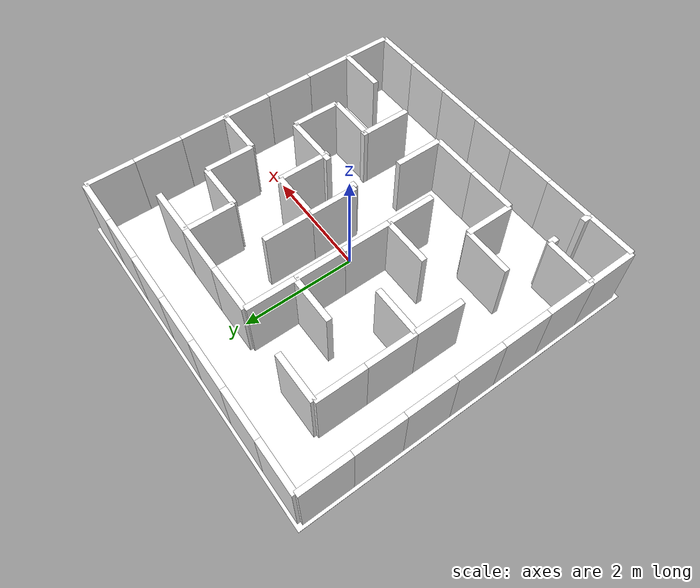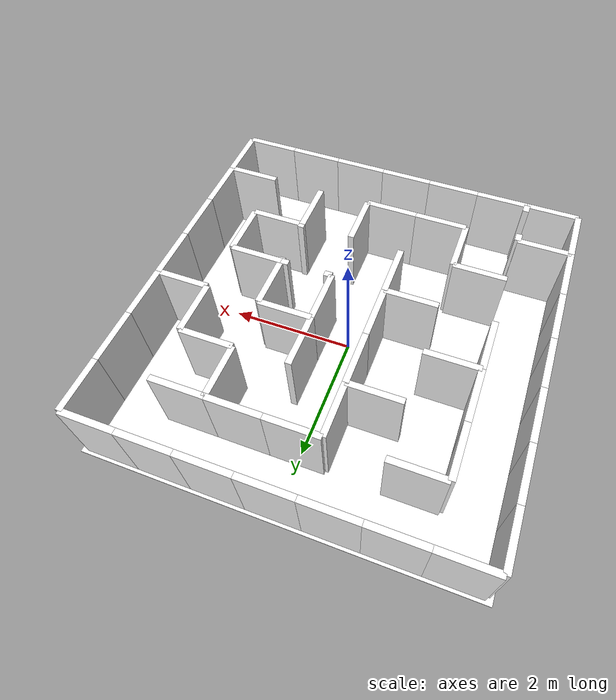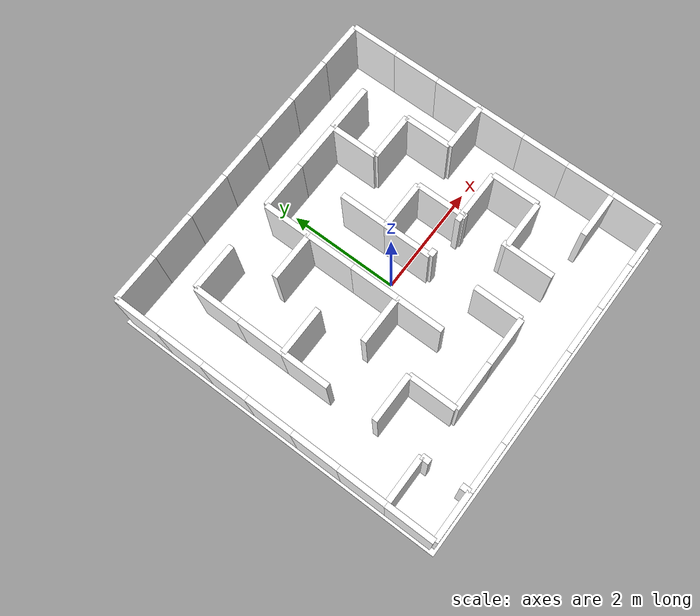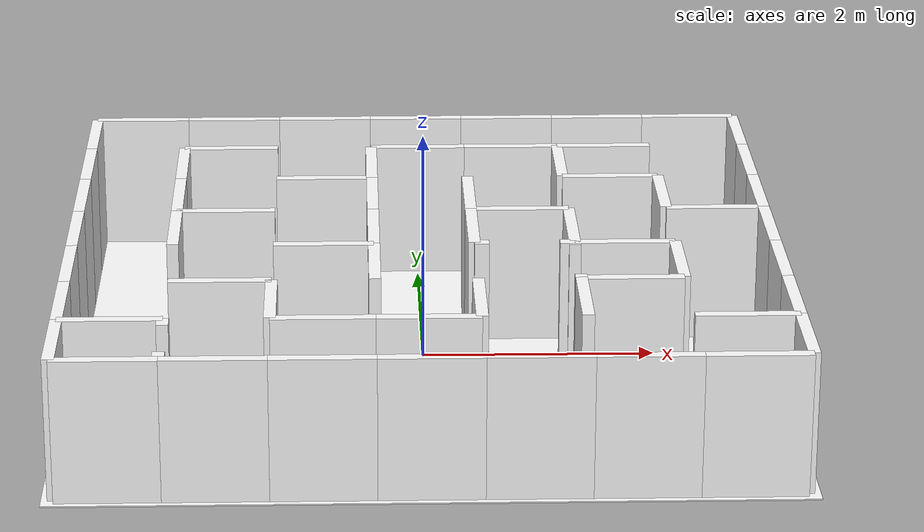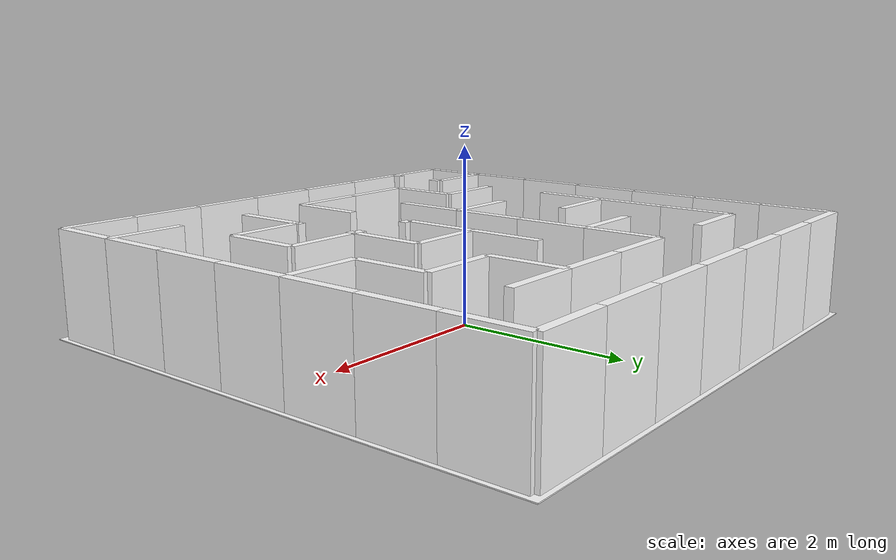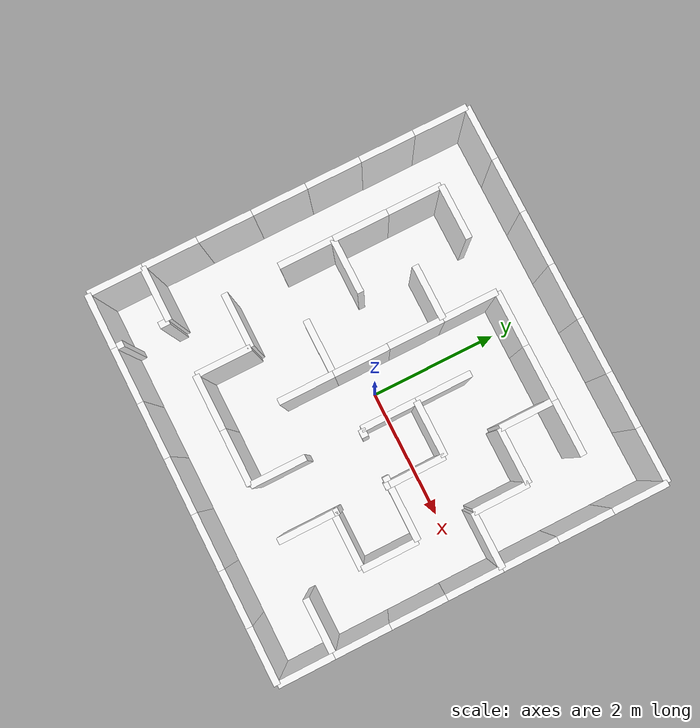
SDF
<?xml version="1.0" ?>
<!-- generate_maze.py 로 생성됨. 직접 수정하지 말고 생성기를 고치세요. -->
<sdf version="1.9">
  <world name="maze">

    <physics name="1ms" type="ignored">
      <max_step_size>0.001</max_step_size>
      <real_time_factor>1.0</real_time_factor>
    </physics>

    <plugin filename="gz-sim-physics-system"
            name="gz::sim::systems::Physics"/>
    <plugin filename="gz-sim-user-commands-system"
            name="gz::sim::systems::UserCommands"/>
    <plugin filename="gz-sim-scene-broadcaster-system"
            name="gz::sim::systems::SceneBroadcaster"/>
    <!-- 카메라/뎁스 렌더링에 필요 -->
    <plugin filename="gz-sim-sensors-system"
            name="gz::sim::systems::Sensors">
      <render_engine>ogre2</render_engine>
    </plugin>
    <plugin filename="gz-sim-imu-system"
            name="gz::sim::systems::Imu"/>
    <plugin filename="gz-sim-contact-system"
            name="gz::sim::systems::Contact"/>

    <gravity>0 0 -9.8</gravity>

    <scene>
      <ambient>0.6 0.6 0.6 1</ambient>
      <background>0.75 0.82 0.9 1</background>
      <shadows>true</shadows>
    </scene>

    <light type="directional" name="sun">
      <cast_shadows>true</cast_shadows>
      <pose>0 0 8 0 0 0</pose>
      <diffuse>0.7 0.7 0.7 1</diffuse>
      <specular>0.1 0.1 0.1 1</specular>
      <direction>-0.4 0.3 -0.9</direction>
    </light>
    <light type="directional" name="fill">
      <cast_shadows>false</cast_shadows>
      <pose>0 0 8 0 0 0</pose>
      <diffuse>0.35 0.35 0.4 1</diffuse>
      <specular>0 0 0 1</specular>
      <direction>0.5 -0.4 -0.8</direction>
    </light>

    <model name="ground_plane">
      <static>true</static>
      <link name="link">
        <collision name="collision">
          <geometry><plane><normal>0 0 1</normal><size>100 100</size></plane></geometry>
          <surface><friction><ode><mu>1.0</mu><mu2>1.0</mu2></ode></friction></surface>
        </collision>
      </link>
    </model>

    <model name="floor">
      <static>true</static>
      <pose>0 0 -0.005 0 0 0</pose>
      <link name="link"><visual name="v">
        <geometry><box><size>6.150 6.150 0.01</size></box></geometry>
        <material><diffuse>1 1 1 1</diffuse><pbr><metal>
          <albedo_map>model://room_materials/materials/textures/floor.png</albedo_map><roughness>0.95</roughness>
        </metal></pbr></material>
      </visual></link>
    </model>
    <model name="vw_0_0">
      <static>true</static>
      <pose>-2.9750 -2.5500 0.6000 0 0 0</pose>
      <link name="link">
        <collision name="c">
          <geometry><box><size>0.1000 0.8500 1.2000</size></box></geometry>
        </collision>
        <visual name="v">
          <geometry><box><size>0.1000 0.8500 1.2000</size></box></geometry>
          <material>
            <diffuse>1 1 1 1</diffuse>
            <pbr><metal>
              <albedo_map>model://room_materials/materials/textures/maze_000.png</albedo_map>
              <roughness>0.9</roughness>
            </metal></pbr>
          </material>
        </visual>
      </link>
    </model>
    <model name="vw_0_1">
      <static>true</static>
      <pose>-2.9750 -1.7000 0.6000 0 0 0</pose>
      <link name="link">
        <collision name="c">
          <geometry><box><size>0.1000 0.8500 1.2000</size></box></geometry>
        </collision>
        <visual name="v">
          <geometry><box><size>0.1000 0.8500 1.2000</size></box></geometry>
          <material>
            <diffuse>1 1 1 1</diffuse>
            <pbr><metal>
              <albedo_map>model://room_materials/materials/textures/maze_001.png</albedo_map>
              <roughness>0.9</roughness>
            </metal></pbr>
          </material>
        </visual>
      </link>
    </model>
    <model name="vw_0_2">
      <static>true</static>
      <pose>-2.9750 -0.8500 0.6000 0 0 0</pose>
      <link name="link">
        <collision name="c">
          <geometry><box><size>0.1000 0.8500 1.2000</size></box></geometry>
        </collision>
        <visual name="v">
          <geometry><box><size>0.1000 0.8500 1.2000</size></box></geometry>
          <material>
            <diffuse>1 1 1 1</diffuse>
            <pbr><metal>
              <albedo_map>model://room_materials/materials/textures/maze_002.png</albedo_map>
              <roughness>0.9</roughness>
            </metal></pbr>
          </material>
        </visual>
      </link>
    </model>
    <model name="vw_0_3">
      <static>true</static>
      <pose>-2.9750 0.0000 0.6000 0 0 0</pose>
      <link name="link">
        <collision name="c">
          <geometry><box><size>0.1000 0.8500 1.2000</size></box></geometry>
        </collision>
        <visual name="v">
          <geometry><box><size>0.1000 0.8500 1.2000</size></box></geometry>
          <material>
            <diffuse>1 1 1 1</diffuse>
            <pbr><metal>
              <albedo_map>model://room_materials/materials/textures/maze_003.png</albedo_map>
              <roughness>0.9</roughness>
            </metal></pbr>
          </material>
        </visual>
      </link>
    </model>
    <model name="vw_0_4">
      <static>true</static>
      <pose>-2.9750 0.8500 0.6000 0 0 0</pose>
      <link name="link">
        <collision name="c">
          <geometry><box><size>0.1000 0.8500 1.2000</size></box></geometry>
        </collision>
        <visual name="v">
          <geometry><box><size>0.1000 0.8500 1.2000</size></box></geometry>
          <material>
            <diffuse>1 1 1 1</diffuse>
            <pbr><metal>
              <albedo_map>model://room_materials/materials/textures/maze_004.png</albedo_map>
              <roughness>0.9</roughness>
            </metal></pbr>
          </material>
        </visual>
      </link>
    </model>
    <model name="vw_0_5">
      <static>true</static>
      <pose>-2.9750 1.7000 0.6000 0 0 0</pose>
      <link name="link">
        <collision name="c">
          <geometry><box><size>0.1000 0.8500 1.2000</size></box></geometry>
        </collision>
        <visual name="v">
          <geometry><box><size>0.1000 0.8500 1.2000</size></box></geometry>
          <material>
            <diffuse>1 1 1 1</diffuse>
            <pbr><metal>
              <albedo_map>model://room_materials/materials/textures/maze_005.png</albedo_map>
              <roughness>0.9</roughness>
            </metal></pbr>
          </material>
        </visual>
      </link>
    </model>
    <model name="vw_0_6">
      <static>true</static>
      <pose>-2.9750 2.5500 0.6000 0 0 0</pose>
      <link name="link">
        <collision name="c">
          <geometry><box><size>0.1000 0.8500 1.2000</size></box></geometry>
        </collision>
        <visual name="v">
          <geometry><box><size>0.1000 0.8500 1.2000</size></box></geometry>
          <material>
            <diffuse>1 1 1 1</diffuse>
            <pbr><metal>
              <albedo_map>model://room_materials/materials/textures/maze_006.png</albedo_map>
              <roughness>0.9</roughness>
            </metal></pbr>
          </material>
        </visual>
      </link>
    </model>
    <model name="vwn_1_0_a">
      <static>true</static>
      <pose>-2.1250 -2.9000 0.6000 0 0 0</pose>
      <link name="link">
        <collision name="c">
          <geometry><box><size>0.1000 0.1500 1.2000</size></box></geometry>
        </collision>
        <visual name="v">
          <geometry><box><size>0.1000 0.1500 1.2000</size></box></geometry>
          <material>
            <diffuse>1 1 1 1</diffuse>
            <pbr><metal>
              <albedo_map>model://room_materials/materials/textures/maze_007.png</albedo_map>
              <roughness>0.9</roughness>
            </metal></pbr>
          </material>
        </visual>
      </link>
    </model>
    <model name="vwn_1_0_b">
      <static>true</static>
      <pose>-2.1250 -2.2000 0.6000 0 0 0</pose>
      <link name="link">
        <collision name="c">
          <geometry><box><size>0.1000 0.1500 1.2000</size></box></geometry>
        </collision>
        <visual name="v">
          <geometry><box><size>0.1000 0.1500 1.2000</size></box></geometry>
          <material>
            <diffuse>1 1 1 1</diffuse>
            <pbr><metal>
              <albedo_map>model://room_materials/materials/textures/maze_008.png</albedo_map>
              <roughness>0.9</roughness>
            </metal></pbr>
          </material>
        </visual>
      </link>
    </model>
    <model name="vw_1_3">
      <static>true</static>
      <pose>-2.1250 0.0000 0.6000 0 0 0</pose>
      <link name="link">
        <collision name="c">
          <geometry><box><size>0.1000 0.8500 1.2000</size></box></geometry>
        </collision>
        <visual name="v">
          <geometry><box><size>0.1000 0.8500 1.2000</size></box></geometry>
          <material>
            <diffuse>1 1 1 1</diffuse>
            <pbr><metal>
              <albedo_map>model://room_materials/materials/textures/maze_009.png</albedo_map>
              <roughness>0.9</roughness>
            </metal></pbr>
          </material>
        </visual>
      </link>
    </model>
    <model name="vw_1_4">
      <static>true</static>
      <pose>-2.1250 0.8500 0.6000 0 0 0</pose>
      <link name="link">
        <collision name="c">
          <geometry><box><size>0.1000 0.8500 1.2000</size></box></geometry>
        </collision>
        <visual name="v">
          <geometry><box><size>0.1000 0.8500 1.2000</size></box></geometry>
          <material>
            <diffuse>1 1 1 1</diffuse>
            <pbr><metal>
              <albedo_map>model://room_materials/materials/textures/maze_010.png</albedo_map>
              <roughness>0.9</roughness>
            </metal></pbr>
          </material>
        </visual>
      </link>
    </model>
    <model name="vw_1_5">
      <static>true</static>
      <pose>-2.1250 1.7000 0.6000 0 0 0</pose>
      <link name="link">
        <collision name="c">
          <geometry><box><size>0.1000 0.8500 1.2000</size></box></geometry>
        </collision>
        <visual name="v">
          <geometry><box><size>0.1000 0.8500 1.2000</size></box></geometry>
          <material>
            <diffuse>1 1 1 1</diffuse>
            <pbr><metal>
              <albedo_map>model://room_materials/materials/textures/maze_011.png</albedo_map>
              <roughness>0.9</roughness>
            </metal></pbr>
          </material>
        </visual>
      </link>
    </model>
    <model name="vw_2_1">
      <static>true</static>
      <pose>-1.2750 -1.7000 0.6000 0 0 0</pose>
      <link name="link">
        <collision name="c">
          <geometry><box><size>0.1000 0.8500 1.2000</size></box></geometry>
        </collision>
        <visual name="v">
          <geometry><box><size>0.1000 0.8500 1.2000</size></box></geometry>
          <material>
            <diffuse>1 1 1 1</diffuse>
            <pbr><metal>
              <albedo_map>model://room_materials/materials/textures/maze_012.png</albedo_map>
              <roughness>0.9</roughness>
            </metal></pbr>
          </material>
        </visual>
      </link>
    </model>
    <model name="vw_3_2">
      <static>true</static>
      <pose>-0.4250 -0.8500 0.6000 0 0 0</pose>
      <link name="link">
        <collision name="c">
          <geometry><box><size>0.1000 0.8500 1.2000</size></box></geometry>
        </collision>
        <visual name="v">
          <geometry><box><size>0.1000 0.8500 1.2000</size></box></geometry>
          <material>
            <diffuse>1 1 1 1</diffuse>
            <pbr><metal>
              <albedo_map>model://room_materials/materials/textures/maze_013.png</albedo_map>
              <roughness>0.9</roughness>
            </metal></pbr>
          </material>
        </visual>
      </link>
    </model>
    <model name="vw_3_3">
      <static>true</static>
      <pose>-0.4250 0.0000 0.6000 0 0 0</pose>
      <link name="link">
        <collision name="c">
          <geometry><box><size>0.1000 0.8500 1.2000</size></box></geometry>
        </collision>
        <visual name="v">
          <geometry><box><size>0.1000 0.8500 1.2000</size></box></geometry>
          <material>
            <diffuse>1 1 1 1</diffuse>
            <pbr><metal>
              <albedo_map>model://room_materials/materials/textures/maze_014.png</albedo_map>
              <roughness>0.9</roughness>
            </metal></pbr>
          </material>
        </visual>
      </link>
    </model>
    <model name="vw_3_4">
      <static>true</static>
      <pose>-0.4250 0.8500 0.6000 0 0 0</pose>
      <link name="link">
        <collision name="c">
          <geometry><box><size>0.1000 0.8500 1.2000</size></box></geometry>
        </collision>
        <visual name="v">
          <geometry><box><size>0.1000 0.8500 1.2000</size></box></geometry>
          <material>
            <diffuse>1 1 1 1</diffuse>
            <pbr><metal>
              <albedo_map>model://room_materials/materials/textures/maze_015.png</albedo_map>
              <roughness>0.9</roughness>
            </metal></pbr>
          </material>
        </visual>
      </link>
    </model>
    <model name="vw_3_5">
      <static>true</static>
      <pose>-0.4250 1.7000 0.6000 0 0 0</pose>
      <link name="link">
        <collision name="c">
          <geometry><box><size>0.1000 0.8500 1.2000</size></box></geometry>
        </collision>
        <visual name="v">
          <geometry><box><size>0.1000 0.8500 1.2000</size></box></geometry>
          <material>
            <diffuse>1 1 1 1</diffuse>
            <pbr><metal>
              <albedo_map>model://room_materials/materials/textures/maze_016.png</albedo_map>
              <roughness>0.9</roughness>
            </metal></pbr>
          </material>
        </visual>
      </link>
    </model>
    <model name="vw_4_1">
      <static>true</static>
      <pose>0.4250 -1.7000 0.6000 0 0 0</pose>
      <link name="link">
        <collision name="c">
          <geometry><box><size>0.1000 0.8500 1.2000</size></box></geometry>
        </collision>
        <visual name="v">
          <geometry><box><size>0.1000 0.8500 1.2000</size></box></geometry>
          <material>
            <diffuse>1 1 1 1</diffuse>
            <pbr><metal>
              <albedo_map>model://room_materials/materials/textures/maze_017.png</albedo_map>
              <roughness>0.9</roughness>
            </metal></pbr>
          </material>
        </visual>
      </link>
    </model>
    <model name="vw_4_3">
      <static>true</static>
      <pose>0.4250 0.0000 0.6000 0 0 0</pose>
      <link name="link">
        <collision name="c">
          <geometry><box><size>0.1000 0.8500 1.2000</size></box></geometry>
        </collision>
        <visual name="v">
          <geometry><box><size>0.1000 0.8500 1.2000</size></box></geometry>
          <material>
            <diffuse>1 1 1 1</diffuse>
            <pbr><metal>
              <albedo_map>model://room_materials/materials/textures/maze_018.png</albedo_map>
              <roughness>0.9</roughness>
            </metal></pbr>
          </material>
        </visual>
      </link>
    </model>
    <model name="vw_4_4">
      <static>true</static>
      <pose>0.4250 0.8500 0.6000 0 0 0</pose>
      <link name="link">
        <collision name="c">
          <geometry><box><size>0.1000 0.8500 1.2000</size></box></geometry>
        </collision>
        <visual name="v">
          <geometry><box><size>0.1000 0.8500 1.2000</size></box></geometry>
          <material>
            <diffuse>1 1 1 1</diffuse>
            <pbr><metal>
              <albedo_map>model://room_materials/materials/textures/maze_019.png</albedo_map>
              <roughness>0.9</roughness>
            </metal></pbr>
          </material>
        </visual>
      </link>
    </model>
    <model name="vw_5_1">
      <static>true</static>
      <pose>1.2750 -1.7000 0.6000 0 0 0</pose>
      <link name="link">
        <collision name="c">
          <geometry><box><size>0.1000 0.8500 1.2000</size></box></geometry>
        </collision>
        <visual name="v">
          <geometry><box><size>0.1000 0.8500 1.2000</size></box></geometry>
          <material>
            <diffuse>1 1 1 1</diffuse>
            <pbr><metal>
              <albedo_map>model://room_materials/materials/textures/maze_020.png</albedo_map>
              <roughness>0.9</roughness>
            </metal></pbr>
          </material>
        </visual>
      </link>
    </model>
    <model name="vwn_5_2_a">
      <static>true</static>
      <pose>1.2750 -1.2375 0.6000 0 0 0</pose>
      <link name="link">
        <collision name="c">
          <geometry><box><size>0.1000 0.0750 1.2000</size></box></geometry>
        </collision>
        <visual name="v">
          <geometry><box><size>0.1000 0.0750 1.2000</size></box></geometry>
          <material>
            <diffuse>1 1 1 1</diffuse>
            <pbr><metal>
              <albedo_map>model://room_materials/materials/textures/maze_021.png</albedo_map>
              <roughness>0.9</roughness>
            </metal></pbr>
          </material>
        </visual>
      </link>
    </model>
    <model name="vwn_5_2_b">
      <static>true</static>
      <pose>1.2750 -0.4625 0.6000 0 0 0</pose>
      <link name="link">
        <collision name="c">
          <geometry><box><size>0.1000 0.0750 1.2000</size></box></geometry>
        </collision>
        <visual name="v">
          <geometry><box><size>0.1000 0.0750 1.2000</size></box></geometry>
          <material>
            <diffuse>1 1 1 1</diffuse>
            <pbr><metal>
              <albedo_map>model://room_materials/materials/textures/maze_022.png</albedo_map>
              <roughness>0.9</roughness>
            </metal></pbr>
          </material>
        </visual>
      </link>
    </model>
    <model name="vw_5_3">
      <static>true</static>
      <pose>1.2750 0.0000 0.6000 0 0 0</pose>
      <link name="link">
        <collision name="c">
          <geometry><box><size>0.1000 0.8500 1.2000</size></box></geometry>
        </collision>
        <visual name="v">
          <geometry><box><size>0.1000 0.8500 1.2000</size></box></geometry>
          <material>
            <diffuse>1 1 1 1</diffuse>
            <pbr><metal>
              <albedo_map>model://room_materials/materials/textures/maze_023.png</albedo_map>
              <roughness>0.9</roughness>
            </metal></pbr>
          </material>
        </visual>
      </link>
    </model>
    <model name="vw_5_5">
      <static>true</static>
      <pose>1.2750 1.7000 0.6000 0 0 0</pose>
      <link name="link">
        <collision name="c">
          <geometry><box><size>0.1000 0.8500 1.2000</size></box></geometry>
        </collision>
        <visual name="v">
          <geometry><box><size>0.1000 0.8500 1.2000</size></box></geometry>
          <material>
            <diffuse>1 1 1 1</diffuse>
            <pbr><metal>
              <albedo_map>model://room_materials/materials/textures/maze_024.png</albedo_map>
              <roughness>0.9</roughness>
            </metal></pbr>
          </material>
        </visual>
      </link>
    </model>
    <model name="vw_6_2">
      <static>true</static>
      <pose>2.1250 -0.8500 0.6000 0 0 0</pose>
      <link name="link">
        <collision name="c">
          <geometry><box><size>0.1000 0.8500 1.2000</size></box></geometry>
        </collision>
        <visual name="v">
          <geometry><box><size>0.1000 0.8500 1.2000</size></box></geometry>
          <material>
            <diffuse>1 1 1 1</diffuse>
            <pbr><metal>
              <albedo_map>model://room_materials/materials/textures/maze_025.png</albedo_map>
              <roughness>0.9</roughness>
            </metal></pbr>
          </material>
        </visual>
      </link>
    </model>
    <model name="vw_6_4">
      <static>true</static>
      <pose>2.1250 0.8500 0.6000 0 0 0</pose>
      <link name="link">
        <collision name="c">
          <geometry><box><size>0.1000 0.8500 1.2000</size></box></geometry>
        </collision>
        <visual name="v">
          <geometry><box><size>0.1000 0.8500 1.2000</size></box></geometry>
          <material>
            <diffuse>1 1 1 1</diffuse>
            <pbr><metal>
              <albedo_map>model://room_materials/materials/textures/maze_026.png</albedo_map>
              <roughness>0.9</roughness>
            </metal></pbr>
          </material>
        </visual>
      </link>
    </model>
    <model name="vw_7_0">
      <static>true</static>
      <pose>2.9750 -2.5500 0.6000 0 0 0</pose>
      <link name="link">
        <collision name="c">
          <geometry><box><size>0.1000 0.8500 1.2000</size></box></geometry>
        </collision>
        <visual name="v">
          <geometry><box><size>0.1000 0.8500 1.2000</size></box></geometry>
          <material>
            <diffuse>1 1 1 1</diffuse>
            <pbr><metal>
              <albedo_map>model://room_materials/materials/textures/maze_027.png</albedo_map>
              <roughness>0.9</roughness>
            </metal></pbr>
          </material>
        </visual>
      </link>
    </model>
    <model name="vw_7_1">
      <static>true</static>
      <pose>2.9750 -1.7000 0.6000 0 0 0</pose>
      <link name="link">
        <collision name="c">
          <geometry><box><size>0.1000 0.8500 1.2000</size></box></geometry>
        </collision>
        <visual name="v">
          <geometry><box><size>0.1000 0.8500 1.2000</size></box></geometry>
          <material>
            <diffuse>1 1 1 1</diffuse>
            <pbr><metal>
              <albedo_map>model://room_materials/materials/textures/maze_028.png</albedo_map>
              <roughness>0.9</roughness>
            </metal></pbr>
          </material>
        </visual>
      </link>
    </model>
    <model name="vw_7_2">
      <static>true</static>
      <pose>2.9750 -0.8500 0.6000 0 0 0</pose>
      <link name="link">
        <collision name="c">
          <geometry><box><size>0.1000 0.8500 1.2000</size></box></geometry>
        </collision>
        <visual name="v">
          <geometry><box><size>0.1000 0.8500 1.2000</size></box></geometry>
          <material>
            <diffuse>1 1 1 1</diffuse>
            <pbr><metal>
              <albedo_map>model://room_materials/materials/textures/maze_029.png</albedo_map>
              <roughness>0.9</roughness>
            </metal></pbr>
          </material>
        </visual>
      </link>
    </model>
    <model name="vw_7_3">
      <static>true</static>
      <pose>2.9750 0.0000 0.6000 0 0 0</pose>
      <link name="link">
        <collision name="c">
          <geometry><box><size>0.1000 0.8500 1.2000</size></box></geometry>
        </collision>
        <visual name="v">
          <geometry><box><size>0.1000 0.8500 1.2000</size></box></geometry>
          <material>
            <diffuse>1 1 1 1</diffuse>
            <pbr><metal>
              <albedo_map>model://room_materials/materials/textures/maze_030.png</albedo_map>
              <roughness>0.9</roughness>
            </metal></pbr>
          </material>
        </visual>
      </link>
    </model>
    <model name="vw_7_4">
      <static>true</static>
      <pose>2.9750 0.8500 0.6000 0 0 0</pose>
      <link name="link">
        <collision name="c">
          <geometry><box><size>0.1000 0.8500 1.2000</size></box></geometry>
        </collision>
        <visual name="v">
          <geometry><box><size>0.1000 0.8500 1.2000</size></box></geometry>
          <material>
            <diffuse>1 1 1 1</diffuse>
            <pbr><metal>
              <albedo_map>model://room_materials/materials/textures/maze_031.png</albedo_map>
              <roughness>0.9</roughness>
            </metal></pbr>
          </material>
        </visual>
      </link>
    </model>
    <model name="vw_7_5">
      <static>true</static>
      <pose>2.9750 1.7000 0.6000 0 0 0</pose>
      <link name="link">
        <collision name="c">
          <geometry><box><size>0.1000 0.8500 1.2000</size></box></geometry>
        </collision>
        <visual name="v">
          <geometry><box><size>0.1000 0.8500 1.2000</size></box></geometry>
          <material>
            <diffuse>1 1 1 1</diffuse>
            <pbr><metal>
              <albedo_map>model://room_materials/materials/textures/maze_032.png</albedo_map>
              <roughness>0.9</roughness>
            </metal></pbr>
          </material>
        </visual>
      </link>
    </model>
    <model name="vw_7_6">
      <static>true</static>
      <pose>2.9750 2.5500 0.6000 0 0 0</pose>
      <link name="link">
        <collision name="c">
          <geometry><box><size>0.1000 0.8500 1.2000</size></box></geometry>
        </collision>
        <visual name="v">
          <geometry><box><size>0.1000 0.8500 1.2000</size></box></geometry>
          <material>
            <diffuse>1 1 1 1</diffuse>
            <pbr><metal>
              <albedo_map>model://room_materials/materials/textures/maze_033.png</albedo_map>
              <roughness>0.9</roughness>
            </metal></pbr>
          </material>
        </visual>
      </link>
    </model>
    <model name="hw_0_0">
      <static>true</static>
      <pose>-2.5500 -2.9750 0.6000 0 0 0</pose>
      <link name="link">
        <collision name="c">
          <geometry><box><size>0.8500 0.1000 1.2000</size></box></geometry>
        </collision>
        <visual name="v">
          <geometry><box><size>0.8500 0.1000 1.2000</size></box></geometry>
          <material>
            <diffuse>1 1 1 1</diffuse>
            <pbr><metal>
              <albedo_map>model://room_materials/materials/textures/maze_034.png</albedo_map>
              <roughness>0.9</roughness>
            </metal></pbr>
          </material>
        </visual>
      </link>
    </model>
    <model name="hw_0_1">
      <static>true</static>
      <pose>-2.5500 -2.1250 0.6000 0 0 0</pose>
      <link name="link">
        <collision name="c">
          <geometry><box><size>0.8500 0.1000 1.2000</size></box></geometry>
        </collision>
        <visual name="v">
          <geometry><box><size>0.8500 0.1000 1.2000</size></box></geometry>
          <material>
            <diffuse>1 1 1 1</diffuse>
            <pbr><metal>
              <albedo_map>model://room_materials/materials/textures/maze_035.png</albedo_map>
              <roughness>0.9</roughness>
            </metal></pbr>
          </material>
        </visual>
      </link>
    </model>
    <model name="hw_0_7">
      <static>true</static>
      <pose>-2.5500 2.9750 0.6000 0 0 0</pose>
      <link name="link">
        <collision name="c">
          <geometry><box><size>0.8500 0.1000 1.2000</size></box></geometry>
        </collision>
        <visual name="v">
          <geometry><box><size>0.8500 0.1000 1.2000</size></box></geometry>
          <material>
            <diffuse>1 1 1 1</diffuse>
            <pbr><metal>
              <albedo_map>model://room_materials/materials/textures/maze_036.png</albedo_map>
              <roughness>0.9</roughness>
            </metal></pbr>
          </material>
        </visual>
      </link>
    </model>
    <model name="hw_1_0">
      <static>true</static>
      <pose>-1.7000 -2.9750 0.6000 0 0 0</pose>
      <link name="link">
        <collision name="c">
          <geometry><box><size>0.8500 0.1000 1.2000</size></box></geometry>
        </collision>
        <visual name="v">
          <geometry><box><size>0.8500 0.1000 1.2000</size></box></geometry>
          <material>
            <diffuse>1 1 1 1</diffuse>
            <pbr><metal>
              <albedo_map>model://room_materials/materials/textures/maze_037.png</albedo_map>
              <roughness>0.9</roughness>
            </metal></pbr>
          </material>
        </visual>
      </link>
    </model>
    <model name="hw_1_2">
      <static>true</static>
      <pose>-1.7000 -1.2750 0.6000 0 0 0</pose>
      <link name="link">
        <collision name="c">
          <geometry><box><size>0.8500 0.1000 1.2000</size></box></geometry>
        </collision>
        <visual name="v">
          <geometry><box><size>0.8500 0.1000 1.2000</size></box></geometry>
          <material>
            <diffuse>1 1 1 1</diffuse>
            <pbr><metal>
              <albedo_map>model://room_materials/materials/textures/maze_038.png</albedo_map>
              <roughness>0.9</roughness>
            </metal></pbr>
          </material>
        </visual>
      </link>
    </model>
    <model name="hw_1_4">
      <static>true</static>
      <pose>-1.7000 0.4250 0.6000 0 0 0</pose>
      <link name="link">
        <collision name="c">
          <geometry><box><size>0.8500 0.1000 1.2000</size></box></geometry>
        </collision>
        <visual name="v">
          <geometry><box><size>0.8500 0.1000 1.2000</size></box></geometry>
          <material>
            <diffuse>1 1 1 1</diffuse>
            <pbr><metal>
              <albedo_map>model://room_materials/materials/textures/maze_039.png</albedo_map>
              <roughness>0.9</roughness>
            </metal></pbr>
          </material>
        </visual>
      </link>
    </model>
    <model name="hw_1_6">
      <static>true</static>
      <pose>-1.7000 2.1250 0.6000 0 0 0</pose>
      <link name="link">
        <collision name="c">
          <geometry><box><size>0.8500 0.1000 1.2000</size></box></geometry>
        </collision>
        <visual name="v">
          <geometry><box><size>0.8500 0.1000 1.2000</size></box></geometry>
          <material>
            <diffuse>1 1 1 1</diffuse>
            <pbr><metal>
              <albedo_map>model://room_materials/materials/textures/maze_040.png</albedo_map>
              <roughness>0.9</roughness>
            </metal></pbr>
          </material>
        </visual>
      </link>
    </model>
    <model name="hw_1_7">
      <static>true</static>
      <pose>-1.7000 2.9750 0.6000 0 0 0</pose>
      <link name="link">
        <collision name="c">
          <geometry><box><size>0.8500 0.1000 1.2000</size></box></geometry>
        </collision>
        <visual name="v">
          <geometry><box><size>0.8500 0.1000 1.2000</size></box></geometry>
          <material>
            <diffuse>1 1 1 1</diffuse>
            <pbr><metal>
              <albedo_map>model://room_materials/materials/textures/maze_041.png</albedo_map>
              <roughness>0.9</roughness>
            </metal></pbr>
          </material>
        </visual>
      </link>
    </model>
    <model name="hw_2_0">
      <static>true</static>
      <pose>-0.8500 -2.9750 0.6000 0 0 0</pose>
      <link name="link">
        <collision name="c">
          <geometry><box><size>0.8500 0.1000 1.2000</size></box></geometry>
        </collision>
        <visual name="v">
          <geometry><box><size>0.8500 0.1000 1.2000</size></box></geometry>
          <material>
            <diffuse>1 1 1 1</diffuse>
            <pbr><metal>
              <albedo_map>model://room_materials/materials/textures/maze_042.png</albedo_map>
              <roughness>0.9</roughness>
            </metal></pbr>
          </material>
        </visual>
      </link>
    </model>
    <model name="hw_2_1">
      <static>true</static>
      <pose>-0.8500 -2.1250 0.6000 0 0 0</pose>
      <link name="link">
        <collision name="c">
          <geometry><box><size>0.8500 0.1000 1.2000</size></box></geometry>
        </collision>
        <visual name="v">
          <geometry><box><size>0.8500 0.1000 1.2000</size></box></geometry>
          <material>
            <diffuse>1 1 1 1</diffuse>
            <pbr><metal>
              <albedo_map>model://room_materials/materials/textures/maze_043.png</albedo_map>
              <roughness>0.9</roughness>
            </metal></pbr>
          </material>
        </visual>
      </link>
    </model>
    <model name="hw_2_3">
      <static>true</static>
      <pose>-0.8500 -0.4250 0.6000 0 0 0</pose>
      <link name="link">
        <collision name="c">
          <geometry><box><size>0.8500 0.1000 1.2000</size></box></geometry>
        </collision>
        <visual name="v">
          <geometry><box><size>0.8500 0.1000 1.2000</size></box></geometry>
          <material>
            <diffuse>1 1 1 1</diffuse>
            <pbr><metal>
              <albedo_map>model://room_materials/materials/textures/maze_044.png</albedo_map>
              <roughness>0.9</roughness>
            </metal></pbr>
          </material>
        </visual>
      </link>
    </model>
    <model name="hw_2_5">
      <static>true</static>
      <pose>-0.8500 1.2750 0.6000 0 0 0</pose>
      <link name="link">
        <collision name="c">
          <geometry><box><size>0.8500 0.1000 1.2000</size></box></geometry>
        </collision>
        <visual name="v">
          <geometry><box><size>0.8500 0.1000 1.2000</size></box></geometry>
          <material>
            <diffuse>1 1 1 1</diffuse>
            <pbr><metal>
              <albedo_map>model://room_materials/materials/textures/maze_045.png</albedo_map>
              <roughness>0.9</roughness>
            </metal></pbr>
          </material>
        </visual>
      </link>
    </model>
    <model name="hw_2_7">
      <static>true</static>
      <pose>-0.8500 2.9750 0.6000 0 0 0</pose>
      <link name="link">
        <collision name="c">
          <geometry><box><size>0.8500 0.1000 1.2000</size></box></geometry>
        </collision>
        <visual name="v">
          <geometry><box><size>0.8500 0.1000 1.2000</size></box></geometry>
          <material>
            <diffuse>1 1 1 1</diffuse>
            <pbr><metal>
              <albedo_map>model://room_materials/materials/textures/maze_046.png</albedo_map>
              <roughness>0.9</roughness>
            </metal></pbr>
          </material>
        </visual>
      </link>
    </model>
    <model name="hw_3_0">
      <static>true</static>
      <pose>0.0000 -2.9750 0.6000 0 0 0</pose>
      <link name="link">
        <collision name="c">
          <geometry><box><size>0.8500 0.1000 1.2000</size></box></geometry>
        </collision>
        <visual name="v">
          <geometry><box><size>0.8500 0.1000 1.2000</size></box></geometry>
          <material>
            <diffuse>1 1 1 1</diffuse>
            <pbr><metal>
              <albedo_map>model://room_materials/materials/textures/maze_047.png</albedo_map>
              <roughness>0.9</roughness>
            </metal></pbr>
          </material>
        </visual>
      </link>
    </model>
    <model name="hw_3_1">
      <static>true</static>
      <pose>0.0000 -2.1250 0.6000 0 0 0</pose>
      <link name="link">
        <collision name="c">
          <geometry><box><size>0.8500 0.1000 1.2000</size></box></geometry>
        </collision>
        <visual name="v">
          <geometry><box><size>0.8500 0.1000 1.2000</size></box></geometry>
          <material>
            <diffuse>1 1 1 1</diffuse>
            <pbr><metal>
              <albedo_map>model://room_materials/materials/textures/maze_048.png</albedo_map>
              <roughness>0.9</roughness>
            </metal></pbr>
          </material>
        </visual>
      </link>
    </model>
    <model name="hw_3_6">
      <static>true</static>
      <pose>0.0000 2.1250 0.6000 0 0 0</pose>
      <link name="link">
        <collision name="c">
          <geometry><box><size>0.8500 0.1000 1.2000</size></box></geometry>
        </collision>
        <visual name="v">
          <geometry><box><size>0.8500 0.1000 1.2000</size></box></geometry>
          <material>
            <diffuse>1 1 1 1</diffuse>
            <pbr><metal>
              <albedo_map>model://room_materials/materials/textures/maze_049.png</albedo_map>
              <roughness>0.9</roughness>
            </metal></pbr>
          </material>
        </visual>
      </link>
    </model>
    <model name="hw_3_7">
      <static>true</static>
      <pose>0.0000 2.9750 0.6000 0 0 0</pose>
      <link name="link">
        <collision name="c">
          <geometry><box><size>0.8500 0.1000 1.2000</size></box></geometry>
        </collision>
        <visual name="v">
          <geometry><box><size>0.8500 0.1000 1.2000</size></box></geometry>
          <material>
            <diffuse>1 1 1 1</diffuse>
            <pbr><metal>
              <albedo_map>model://room_materials/materials/textures/maze_050.png</albedo_map>
              <roughness>0.9</roughness>
            </metal></pbr>
          </material>
        </visual>
      </link>
    </model>
    <model name="hw_4_0">
      <static>true</static>
      <pose>0.8500 -2.9750 0.6000 0 0 0</pose>
      <link name="link">
        <collision name="c">
          <geometry><box><size>0.8500 0.1000 1.2000</size></box></geometry>
        </collision>
        <visual name="v">
          <geometry><box><size>0.8500 0.1000 1.2000</size></box></geometry>
          <material>
            <diffuse>1 1 1 1</diffuse>
            <pbr><metal>
              <albedo_map>model://room_materials/materials/textures/maze_051.png</albedo_map>
              <roughness>0.9</roughness>
            </metal></pbr>
          </material>
        </visual>
      </link>
    </model>
    <model name="hwn_4_3_a">
      <static>true</static>
      <pose>0.4875 -0.4250 0.6000 0 0 0</pose>
      <link name="link">
        <collision name="c">
          <geometry><box><size>0.1250 0.1000 1.2000</size></box></geometry>
        </collision>
        <visual name="v">
          <geometry><box><size>0.1250 0.1000 1.2000</size></box></geometry>
          <material>
            <diffuse>1 1 1 1</diffuse>
            <pbr><metal>
              <albedo_map>model://room_materials/materials/textures/maze_052.png</albedo_map>
              <roughness>0.9</roughness>
            </metal></pbr>
          </material>
        </visual>
      </link>
    </model>
    <model name="hwn_4_3_b">
      <static>true</static>
      <pose>1.2125 -0.4250 0.6000 0 0 0</pose>
      <link name="link">
        <collision name="c">
          <geometry><box><size>0.1250 0.1000 1.2000</size></box></geometry>
        </collision>
        <visual name="v">
          <geometry><box><size>0.1250 0.1000 1.2000</size></box></geometry>
          <material>
            <diffuse>1 1 1 1</diffuse>
            <pbr><metal>
              <albedo_map>model://room_materials/materials/textures/maze_053.png</albedo_map>
              <roughness>0.9</roughness>
            </metal></pbr>
          </material>
        </visual>
      </link>
    </model>
    <model name="hw_4_4">
      <static>true</static>
      <pose>0.8500 0.4250 0.6000 0 0 0</pose>
      <link name="link">
        <collision name="c">
          <geometry><box><size>0.8500 0.1000 1.2000</size></box></geometry>
        </collision>
        <visual name="v">
          <geometry><box><size>0.8500 0.1000 1.2000</size></box></geometry>
          <material>
            <diffuse>1 1 1 1</diffuse>
            <pbr><metal>
              <albedo_map>model://room_materials/materials/textures/maze_054.png</albedo_map>
              <roughness>0.9</roughness>
            </metal></pbr>
          </material>
        </visual>
      </link>
    </model>
    <model name="hw_4_6">
      <static>true</static>
      <pose>0.8500 2.1250 0.6000 0 0 0</pose>
      <link name="link">
        <collision name="c">
          <geometry><box><size>0.8500 0.1000 1.2000</size></box></geometry>
        </collision>
        <visual name="v">
          <geometry><box><size>0.8500 0.1000 1.2000</size></box></geometry>
          <material>
            <diffuse>1 1 1 1</diffuse>
            <pbr><metal>
              <albedo_map>model://room_materials/materials/textures/maze_055.png</albedo_map>
              <roughness>0.9</roughness>
            </metal></pbr>
          </material>
        </visual>
      </link>
    </model>
    <model name="hw_4_7">
      <static>true</static>
      <pose>0.8500 2.9750 0.6000 0 0 0</pose>
      <link name="link">
        <collision name="c">
          <geometry><box><size>0.8500 0.1000 1.2000</size></box></geometry>
        </collision>
        <visual name="v">
          <geometry><box><size>0.8500 0.1000 1.2000</size></box></geometry>
          <material>
            <diffuse>1 1 1 1</diffuse>
            <pbr><metal>
              <albedo_map>model://room_materials/materials/textures/maze_056.png</albedo_map>
              <roughness>0.9</roughness>
            </metal></pbr>
          </material>
        </visual>
      </link>
    </model>
    <model name="hw_5_0">
      <static>true</static>
      <pose>1.7000 -2.9750 0.6000 0 0 0</pose>
      <link name="link">
        <collision name="c">
          <geometry><box><size>0.8500 0.1000 1.2000</size></box></geometry>
        </collision>
        <visual name="v">
          <geometry><box><size>0.8500 0.1000 1.2000</size></box></geometry>
          <material>
            <diffuse>1 1 1 1</diffuse>
            <pbr><metal>
              <albedo_map>model://room_materials/materials/textures/maze_057.png</albedo_map>
              <roughness>0.9</roughness>
            </metal></pbr>
          </material>
        </visual>
      </link>
    </model>
    <model name="hw_5_2">
      <static>true</static>
      <pose>1.7000 -1.2750 0.6000 0 0 0</pose>
      <link name="link">
        <collision name="c">
          <geometry><box><size>0.8500 0.1000 1.2000</size></box></geometry>
        </collision>
        <visual name="v">
          <geometry><box><size>0.8500 0.1000 1.2000</size></box></geometry>
          <material>
            <diffuse>1 1 1 1</diffuse>
            <pbr><metal>
              <albedo_map>model://room_materials/materials/textures/maze_058.png</albedo_map>
              <roughness>0.9</roughness>
            </metal></pbr>
          </material>
        </visual>
      </link>
    </model>
    <model name="hw_5_3">
      <static>true</static>
      <pose>1.7000 -0.4250 0.6000 0 0 0</pose>
      <link name="link">
        <collision name="c">
          <geometry><box><size>0.8500 0.1000 1.2000</size></box></geometry>
        </collision>
        <visual name="v">
          <geometry><box><size>0.8500 0.1000 1.2000</size></box></geometry>
          <material>
            <diffuse>1 1 1 1</diffuse>
            <pbr><metal>
              <albedo_map>model://room_materials/materials/textures/maze_059.png</albedo_map>
              <roughness>0.9</roughness>
            </metal></pbr>
          </material>
        </visual>
      </link>
    </model>
    <model name="hw_5_5">
      <static>true</static>
      <pose>1.7000 1.2750 0.6000 0 0 0</pose>
      <link name="link">
        <collision name="c">
          <geometry><box><size>0.8500 0.1000 1.2000</size></box></geometry>
        </collision>
        <visual name="v">
          <geometry><box><size>0.8500 0.1000 1.2000</size></box></geometry>
          <material>
            <diffuse>1 1 1 1</diffuse>
            <pbr><metal>
              <albedo_map>model://room_materials/materials/textures/maze_060.png</albedo_map>
              <roughness>0.9</roughness>
            </metal></pbr>
          </material>
        </visual>
      </link>
    </model>
    <model name="hw_5_6">
      <static>true</static>
      <pose>1.7000 2.1250 0.6000 0 0 0</pose>
      <link name="link">
        <collision name="c">
          <geometry><box><size>0.8500 0.1000 1.2000</size></box></geometry>
        </collision>
        <visual name="v">
          <geometry><box><size>0.8500 0.1000 1.2000</size></box></geometry>
          <material>
            <diffuse>1 1 1 1</diffuse>
            <pbr><metal>
              <albedo_map>model://room_materials/materials/textures/maze_061.png</albedo_map>
              <roughness>0.9</roughness>
            </metal></pbr>
          </material>
        </visual>
      </link>
    </model>
    <model name="hw_5_7">
      <static>true</static>
      <pose>1.7000 2.9750 0.6000 0 0 0</pose>
      <link name="link">
        <collision name="c">
          <geometry><box><size>0.8500 0.1000 1.2000</size></box></geometry>
        </collision>
        <visual name="v">
          <geometry><box><size>0.8500 0.1000 1.2000</size></box></geometry>
          <material>
            <diffuse>1 1 1 1</diffuse>
            <pbr><metal>
              <albedo_map>model://room_materials/materials/textures/maze_062.png</albedo_map>
              <roughness>0.9</roughness>
            </metal></pbr>
          </material>
        </visual>
      </link>
    </model>
    <model name="hw_6_0">
      <static>true</static>
      <pose>2.5500 -2.9750 0.6000 0 0 0</pose>
      <link name="link">
        <collision name="c">
          <geometry><box><size>0.8500 0.1000 1.2000</size></box></geometry>
        </collision>
        <visual name="v">
          <geometry><box><size>0.8500 0.1000 1.2000</size></box></geometry>
          <material>
            <diffuse>1 1 1 1</diffuse>
            <pbr><metal>
              <albedo_map>model://room_materials/materials/textures/maze_063.png</albedo_map>
              <roughness>0.9</roughness>
            </metal></pbr>
          </material>
        </visual>
      </link>
    </model>
    <model name="hw_6_1">
      <static>true</static>
      <pose>2.5500 -2.1250 0.6000 0 0 0</pose>
      <link name="link">
        <collision name="c">
          <geometry><box><size>0.8500 0.1000 1.2000</size></box></geometry>
        </collision>
        <visual name="v">
          <geometry><box><size>0.8500 0.1000 1.2000</size></box></geometry>
          <material>
            <diffuse>1 1 1 1</diffuse>
            <pbr><metal>
              <albedo_map>model://room_materials/materials/textures/maze_064.png</albedo_map>
              <roughness>0.9</roughness>
            </metal></pbr>
          </material>
        </visual>
      </link>
    </model>
    <model name="hw_6_4">
      <static>true</static>
      <pose>2.5500 0.4250 0.6000 0 0 0</pose>
      <link name="link">
        <collision name="c">
          <geometry><box><size>0.8500 0.1000 1.2000</size></box></geometry>
        </collision>
        <visual name="v">
          <geometry><box><size>0.8500 0.1000 1.2000</size></box></geometry>
          <material>
            <diffuse>1 1 1 1</diffuse>
            <pbr><metal>
              <albedo_map>model://room_materials/materials/textures/maze_065.png</albedo_map>
              <roughness>0.9</roughness>
            </metal></pbr>
          </material>
        </visual>
      </link>
    </model>
    <model name="hw_6_7">
      <static>true</static>
      <pose>2.5500 2.9750 0.6000 0 0 0</pose>
      <link name="link">
        <collision name="c">
          <geometry><box><size>0.8500 0.1000 1.2000</size></box></geometry>
        </collision>
        <visual name="v">
          <geometry><box><size>0.8500 0.1000 1.2000</size></box></geometry>
          <material>
            <diffuse>1 1 1 1</diffuse>
            <pbr><metal>
              <albedo_map>model://room_materials/materials/textures/maze_066.png</albedo_map>
              <roughness>0.9</roughness>
            </metal></pbr>
          </material>
        </visual>
      </link>
    </model>
  </world>
</sdf>
